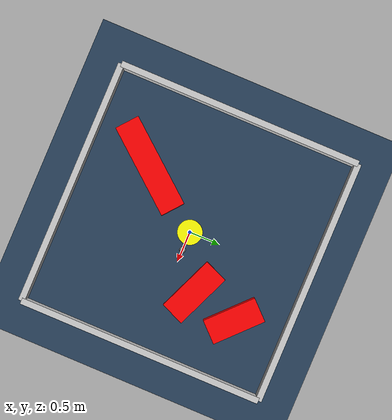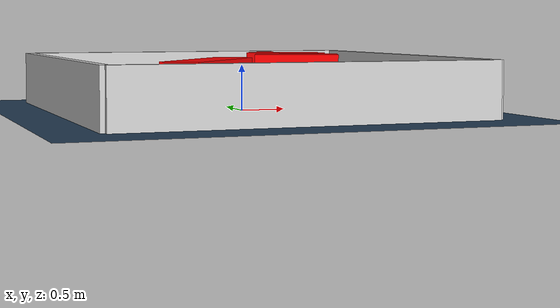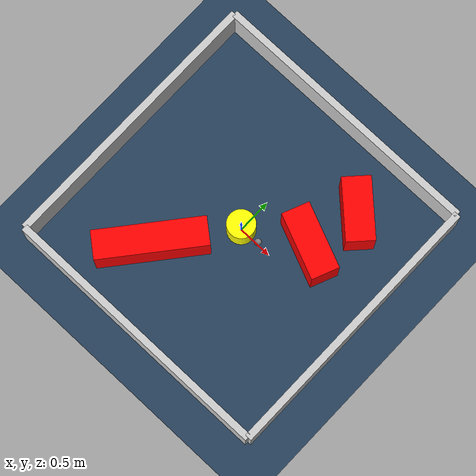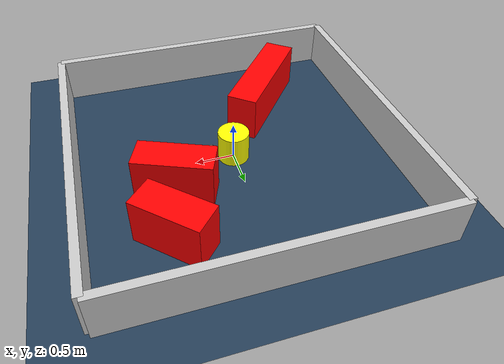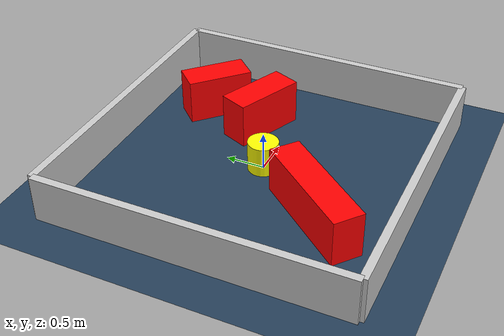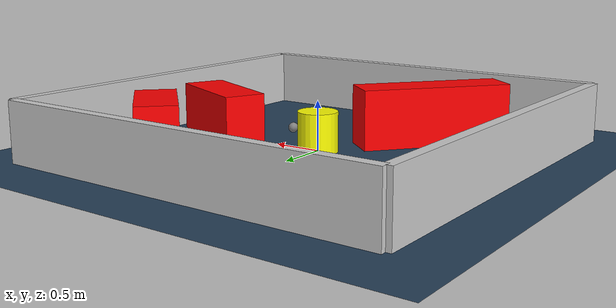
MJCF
<?xml version="1.0" ?>
<mujoco model="generated_environment">
  <option timestep="0.01" integrator="RK4" cone="elliptic"/>
  <default>
    <geom density="1"/>
  </default>
  <asset>
    <texture builtin="gradient" height="3072" rgb1="0.3 0.5 0.7" rgb2="0 0 0" type="skybox" width="512"/>
    <texture builtin="checker" height="300" mark="edge" markrgb="0.8 0.8 0.8" name="groundplane" rgb1="0.2 0.3 0.4" rgb2="0.1 0.2 0.3" type="2d" width="300"/>
    <material name="groundplane" reflectance="0.2" texrepeat="5 5" texture="groundplane" texuniform="true"/>
    <material name="robot" rgba="0.0 1.0 0.0 1"/>
  </asset>
  <worldbody>
    <light dir="0 0 -1" directional="true" pos="0 0 1.5"/>
    <geom condim="4" friction="1.0 0.005 0.001" material="groundplane" name="floor" size="0 0 0.05" type="plane"/>
    <body name="walls">
      <geom name="wall_1" condim="4" pos="-2.0 0.0 0.3" rgba="0.800000011920929 0.800000011920929 0.800000011920929 1.0" size="0.05 2.0 0.3" type="box"/>
      <geom name="wall_2" condim="4" pos="2.0 0.0 0.3" rgba="0.800000011920929 0.800000011920929 0.800000011920929 1.0" size="0.05 2.0 0.3" type="box"/>
      <geom name="wall_3" condim="4" pos="0.0 -2.0 0.3" rgba="0.800000011920929 0.800000011920929 0.800000011920929 1.0" size="2.0 0.05 0.3" type="box"/>
      <geom name="wall_4" condim="4" pos="0.0 2.0 0.3" rgba="0.800000011920929 0.800000011920929 0.800000011920929 1.0" size="2.0 0.05 0.3" type="box"/>
    </body>
    <body name="robot">
      <joint name="joint_x" type="slide" pos="0 0 0" axis="1 0 0"/>
      <joint name="joint_y" type="slide" pos="0 0 0" axis="0 1 0"/>
      <geom name="robot" type="sphere" pos="0.3 0.0 0.2" size="0.05" mass="5." friction="1.0 0.005 0.0001" condim="4" rgba="0.5 0.5 0.5 1.0"/>
      <site name="sensor_ball"/>
    </body>
    <body name="obstacle_movable_1">
      <geom name="obstacle_movable_1" condim="4" pos="0.0 0.0 0.2" euler="0 0 0.0" friction="1.0 0.005 0.001" rgba="1.0 1.0 0.0 1.0" size="0.2 0.2 0.0" type="cylinder" mass="0.1"/>
      <joint type="free"/>
    </body>
    <body name="obstacle_2_static">
      <geom name="obstacle_2_static" condim="4" pos="0.8356964272395326 0.4267805519348935 0.3" euler="0 0 337.1087492014728" friction="1.0 0.005 0.001" rgba="1 0 0 1" size="0.4791609476517088 0.2 0.3" type="box"/>
    </body>
    <body name="obstacle_3_static">
      <geom name="obstacle_3_static" condim="4" pos="-0.7104073261346002 -0.9754884228886115 0.3" euler="0 0 230.60159467080948" friction="1.0 0.005 0.001" rgba="1 0 0 1" size="0.7680291639320986 0.2 0.3" type="box"/>
    </body>
    <body name="obstacle_4_static">
      <geom name="obstacle_4_static" condim="4" pos="1.004612129859993 1.170846104858177 0.3" euler="0 0 136.44395621630048" friction="1.0 0.005 0.001" rgba="1 0 0 1" size="0.4372212622619614 0.2 0.3" type="box"/>
    </body>
  </worldbody>
  <actuator>
    <motor name="actuator_x" joint="joint_x" gear="1" ctrlrange="-1 1"/>
    <motor name="actuator_y" joint="joint_y" gear="1" ctrlrange="-1 1"/>
  </actuator>
</mujoco>
